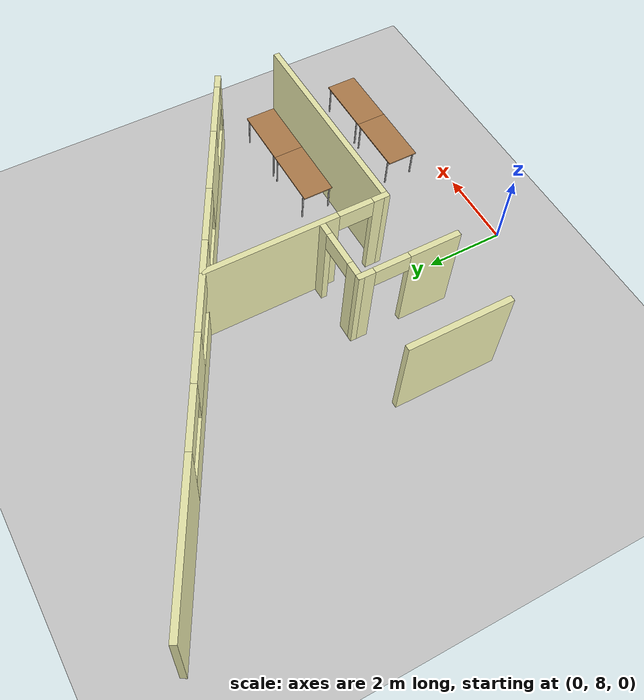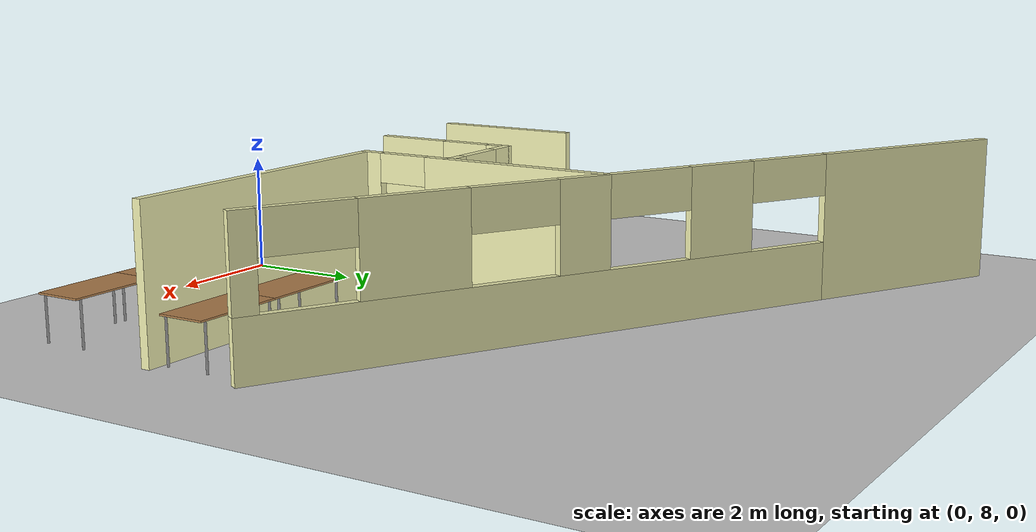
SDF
<sdf version="1.6">
 <world name="default">
  <model name="ground_plane">
   <static>1</static>
   <link name="link">
    <collision name="collision">
     <geometry><plane><normal>0 0 1</normal><size>100 100</size></plane></geometry>
     <surface><friction><ode><mu>100</mu><mu2>50</mu2></ode></friction></surface>
    </collision>
    <visual name="visual">
     <cast_shadows>0</cast_shadows>
     <geometry><plane><normal>0 0 1</normal><size>100 100</size></plane></geometry>
     <material>
      <script><uri>file://media/materials/scripts/gazebo.material</uri><name>Gazebo/Grey</name></script>
     </material>
    </visual>
   </link>
  </model>
  <model name="Building">
   <link name="Wall_12">
    <pose>0 16.2364 0 0 0 -0.515549</pose>
    <visual name="Wall_12_Visual_0">
     <pose>-5.14943 0 1.25 0 -0 0</pose>
     <geometry><box><size>3.6439 0.15 2.5</size></box></geometry>
     <material>
      <script><uri>file://media/materials/scripts/gazebo.material</uri><name>Gazebo/Grey</name></script>
      <ambient>0.92 0.92 0.68 1</ambient>
     </material>
     <meta><layer>0</layer></meta>
    </visual>
    <collision name="Wall_12_Collision_0">
     <geometry><box><size>3.6439 0.15 2.5</size></box></geometry>
     <pose>-5.14943 0 1.25 0 -0 0</pose>
    </collision>
    <visual name="Wall_12_Visual_1">
     <pose>1.82195 0 0.5 0 -0 0</pose>
     <geometry><box><size>10.2989 0.15 1</size></box></geometry>
     <material>
      <script><uri>file://media/materials/scripts/gazebo.material</uri><name>Gazebo/Grey</name></script>
      <ambient>0.92 0.92 0.68 1</ambient>
     </material>
     <meta><layer>0</layer></meta>
    </visual>
    <collision name="Wall_12_Collision_1">
     <geometry><box><size>10.2989 0.15 1</size></box></geometry>
     <pose>1.82195 0 0.5 0 -0 0</pose>
    </collision>
    <visual name="Wall_12_Visual_2">
     <pose>-1.22144 0 1.75 0 -0 0</pose>
     <geometry><box><size>1.21209 0.15 1.5</size></box></geometry>
     <material>
      <script><uri>file://media/materials/scripts/gazebo.material</uri><name>Gazebo/Grey</name></script>
      <ambient>0.92 0.92 0.68 1</ambient>
     </material>
     <meta><layer>0</layer></meta>
    </visual>
    <collision name="Wall_12_Collision_2">
     <geometry><box><size>1.21209 0.15 1.5</size></box></geometry>
     <pose>-1.22144 0 1.75 0 -0 0</pose>
    </collision>
    <visual name="Wall_12_Visual_3">
     <pose>1.33933 0 1.75 0 -0 0</pose>
     <geometry><box><size>0.909442 0.15 1.5</size></box></geometry>
     <material>
      <script><uri>file://media/materials/scripts/gazebo.material</uri><name>Gazebo/Grey</name></script>
      <ambient>0.92 0.92 0.68 1</ambient>
     </material>
     <meta><layer>0</layer></meta>
    </visual>
    <collision name="Wall_12_Collision_3">
     <geometry><box><size>0.909442 0.15 1.5</size></box></geometry>
     <pose>1.33933 0 1.75 0 -0 0</pose>
    </collision>
    <visual name="Wall_12_Visual_4">
     <pose>4.18293 0 1.75 0 -0 0</pose>
     <geometry><box><size>1.77777 0.15 1.5</size></box></geometry>
     <material>
      <script><uri>file://media/materials/scripts/gazebo.material</uri><name>Gazebo/Grey</name></script>
      <ambient>0.92 0.92 0.68 1</ambient>
     </material>
     <meta><layer>0</layer></meta>
    </visual>
    <collision name="Wall_12_Collision_4">
     <geometry><box><size>1.77777 0.15 1.5</size></box></geometry>
     <pose>4.18293 0 1.75 0 -0 0</pose>
    </collision>
    <visual name="Wall_12_Visual_5">
     <pose>6.7716 0 1.75 0 -0 0</pose>
     <geometry><box><size>0.399558 0.15 1.5</size></box></geometry>
     <material>
      <script><uri>file://media/materials/scripts/gazebo.material</uri><name>Gazebo/Grey</name></script>
      <ambient>0.92 0.92 0.68 1</ambient>
     </material>
     <meta><layer>0</layer></meta>
    </visual>
    <collision name="Wall_12_Collision_5">
     <geometry><box><size>0.399558 0.15 1.5</size></box></geometry>
     <pose>6.7716 0 1.75 0 -0 0</pose>
    </collision>
    <visual name="Wall_12_Visual_6">
     <pose>-2.57748 0 2.15 0 -0 0</pose>
     <geometry><box><size>1.5 0.15 0.7</size></box></geometry>
     <material>
      <script><uri>file://media/materials/scripts/gazebo.material</uri><name>Gazebo/Grey</name></script>
      <ambient>0.92 0.92 0.68 1</ambient>
     </material>
     <meta><layer>0</layer></meta>
    </visual>
    <collision name="Wall_12_Collision_6">
     <geometry><box><size>1.5 0.15 0.7</size></box></geometry>
     <pose>-2.57748 0 2.15 0 -0 0</pose>
    </collision>
    <visual name="Wall_12_Visual_7">
     <pose>0.134607 0 2.15 0 -0 0</pose>
     <geometry><box><size>1.5 0.15 0.7</size></box></geometry>
     <material>
      <script><uri>file://media/materials/scripts/gazebo.material</uri><name>Gazebo/Grey</name></script>
      <ambient>0.92 0.92 0.68 1</ambient>
     </material>
     <meta><layer>0</layer></meta>
    </visual>
    <collision name="Wall_12_Collision_7">
     <geometry><box><size>1.5 0.15 0.7</size></box></geometry>
     <pose>0.134607 0 2.15 0 -0 0</pose>
    </collision>
    <visual name="Wall_12_Visual_8">
     <pose>2.54405 0 2.15 0 -0 0</pose>
     <geometry><box><size>1.5 0.15 0.7</size></box></geometry>
     <material>
      <script><uri>file://media/materials/scripts/gazebo.material</uri><name>Gazebo/Grey</name></script>
      <ambient>0.92 0.92 0.68 1</ambient>
     </material>
     <meta><layer>0</layer></meta>
    </visual>
    <collision name="Wall_12_Collision_8">
     <geometry><box><size>1.5 0.15 0.7</size></box></geometry>
     <pose>2.54405 0 2.15 0 -0 0</pose>
    </collision>
    <visual name="Wall_12_Visual_9">
     <pose>5.82182 0 2.15 0 -0 0</pose>
     <geometry><box><size>1.5 0.15 0.7</size></box></geometry>
     <material>
      <script><uri>file://media/materials/scripts/gazebo.material</uri><name>Gazebo/Grey</name></script>
      <ambient>0.92 0.92 0.68 1</ambient>
     </material>
     <meta><layer>0</layer></meta>
    </visual>
    <collision name="Wall_12_Collision_9">
     <geometry><box><size>1.5 0.15 0.7</size></box></geometry>
     <pose>5.82182 0 2.15 0 -0 0</pose>
    </collision>
   </link>
   <link name="Wall_36">
    <collision name="Wall_36_Collision">
     <geometry><box><size>5.35 0.15 2.5</size></box></geometry>
     <pose>0 0 1.25 0 -0 0</pose>
    </collision>
    <visual name="Wall_36_Visual">
     <pose>0 0 1.25 0 -0 0</pose>
     <geometry><box><size>5.35 0.15 2.5</size></box></geometry>
     <material>
      <script><uri>file://media/materials/scripts/gazebo.material</uri><name>Gazebo/Grey</name></script>
      <ambient>0.92 0.92 0.68 1</ambient>
     </material>
     <meta><layer>0</layer></meta>
    </visual>
    <pose>3.4 11.1364 0 0 -0 3.14159</pose>
   </link>
   <link name="Wall_38">
    <pose>0.8 13.4364 0 0 -0 1.5708</pose>
    <visual name="Wall_38_Visual_0">
     <pose>-2.16251 0 1.25 0 -0 0</pose>
     <geometry><box><size>0.424975 0.15 2.5</size></box></geometry>
     <material>
      <script><uri>file://media/materials/scripts/gazebo.material</uri><name>Gazebo/Grey</name></script>
      <ambient>0.92 0.92 0.68 1</ambient>
     </material>
     <meta><layer>0</layer></meta>
    </visual>
    <collision name="Wall_38_Collision_0">
     <geometry><box><size>0.424975 0.15 2.5</size></box></geometry>
     <pose>-2.16251 0 1.25 0 -0 0</pose>
    </collision>
    <visual name="Wall_38_Visual_1">
     <pose>0.662488 0 1.25 0 -0 0</pose>
     <geometry><box><size>3.42503 0.15 2.5</size></box></geometry>
     <material>
      <script><uri>file://media/materials/scripts/gazebo.material</uri><name>Gazebo/Grey</name></script>
      <ambient>0.92 0.92 0.68 1</ambient>
     </material>
     <meta><layer>0</layer></meta>
    </visual>
    <collision name="Wall_38_Collision_1">
     <geometry><box><size>3.42503 0.15 2.5</size></box></geometry>
     <pose>0.662488 0 1.25 0 -0 0</pose>
    </collision>
    <visual name="Wall_38_Visual_2">
     <pose>-1.50002 0 2.25 0 -0 0</pose>
     <geometry><box><size>0.9 0.15 0.5</size></box></geometry>
     <material>
      <script><uri>file://media/materials/scripts/gazebo.material</uri><name>Gazebo/Grey</name></script>
      <ambient>0.92 0.92 0.68 1</ambient>
     </material>
     <meta><layer>0</layer></meta>
    </visual>
    <collision name="Wall_38_Collision_2">
     <geometry><box><size>0.9 0.15 0.5</size></box></geometry>
     <pose>-1.50002 0 2.25 0 -0 0</pose>
    </collision>
   </link>
   <link name="Wall_44">
    <pose>-0.05 12.8364 0 0 -0 0</pose>
    <visual name="Wall_44_Visual_0">
     <pose>-0.676746 0 1.25 0 -0 0</pose>
     <geometry><box><size>0.496509 0.15 2.5</size></box></geometry>
     <material>
      <script><uri>file://media/materials/scripts/gazebo.material</uri><name>Gazebo/Grey</name></script>
      <ambient>0.92 0.92 0.68 1</ambient>
     </material>
     <meta><layer>0</layer></meta>
    </visual>
    <collision name="Wall_44_Collision_0">
     <geometry><box><size>0.496509 0.15 2.5</size></box></geometry>
     <pose>-0.676746 0 1.25 0 -0 0</pose>
    </collision>
    <visual name="Wall_44_Visual_1">
     <pose>0.698254 0 1.25 0 -0 0</pose>
     <geometry><box><size>0.453491 0.15 2.5</size></box></geometry>
     <material>
      <script><uri>file://media/materials/scripts/gazebo.material</uri><name>Gazebo/Grey</name></script>
      <ambient>0.92 0.92 0.68 1</ambient>
     </material>
     <meta><layer>0</layer></meta>
    </visual>
    <collision name="Wall_44_Collision_1">
     <geometry><box><size>0.453491 0.15 2.5</size></box></geometry>
     <pose>0.698254 0 1.25 0 -0 0</pose>
    </collision>
    <visual name="Wall_44_Visual_2">
     <pose>0.021509 0 2.25 0 -0 0</pose>
     <geometry><box><size>0.9 0.15 0.5</size></box></geometry>
     <material>
      <script><uri>file://media/materials/scripts/gazebo.material</uri><name>Gazebo/Grey</name></script>
      <ambient>0.92 0.92 0.68 1</ambient>
     </material>
     <meta><layer>0</layer></meta>
    </visual>
    <collision name="Wall_44_Collision_2">
     <geometry><box><size>0.9 0.15 0.5</size></box></geometry>
     <pose>0.021509 0 2.25 0 -0 0</pose>
    </collision>
   </link>
   <link name="Wall_47">
    <pose>-0.9 11.5864 0 0 0 -1.5708</pose>
    <visual name="Wall_47_Visual_0">
     <pose>-1.10875 0 1.25 0 -0 0</pose>
     <geometry><box><size>0.432501 0.15 2.5</size></box></geometry>
     <material>
      <script><uri>file://media/materials/scripts/gazebo.material</uri><name>Gazebo/Grey</name></script>
      <ambient>0.92 0.92 0.68 1</ambient>
     </material>
     <meta><layer>0</layer></meta>
    </visual>
    <collision name="Wall_47_Collision_0">
     <geometry><box><size>0.432501 0.15 2.5</size></box></geometry>
     <pose>-1.10875 0 1.25 0 -0 0</pose>
    </collision>
    <visual name="Wall_47_Visual_1">
     <pose>0.66625 0 1.25 0 -0 0</pose>
     <geometry><box><size>1.3175 0.15 2.5</size></box></geometry>
     <material>
      <script><uri>file://media/materials/scripts/gazebo.material</uri><name>Gazebo/Grey</name></script>
      <ambient>0.92 0.92 0.68 1</ambient>
     </material>
     <meta><layer>0</layer></meta>
    </visual>
    <collision name="Wall_47_Collision_1">
     <geometry><box><size>1.3175 0.15 2.5</size></box></geometry>
     <pose>0.66625 0 1.25 0 -0 0</pose>
    </collision>
    <visual name="Wall_47_Visual_2">
     <pose>-0.442499 0 2.25 0 -0 0</pose>
     <geometry><box><size>0.9 0.15 0.5</size></box></geometry>
     <material>
      <script><uri>file://media/materials/scripts/gazebo.material</uri><name>Gazebo/Grey</name></script>
      <ambient>0.92 0.92 0.68 1</ambient>
     </material>
     <meta><layer>0</layer></meta>
    </visual>
    <collision name="Wall_47_Collision_2">
     <geometry><box><size>0.9 0.15 0.5</size></box></geometry>
     <pose>-0.442499 0 2.25 0 -0 0</pose>
    </collision>
   </link>
   <link name="Wall_61">
    <collision name="Wall_61_Collision">
     <geometry><box><size>2.65 0.15 2.5</size></box></geometry>
     <pose>0 0 1.25 0 -0 0</pose>
    </collision>
    <visual name="Wall_61_Visual">
     <pose>0 0 1.25 0 -0 0</pose>
     <geometry><box><size>2.65 0.15 2.5</size></box></geometry>
     <material>
      <script><uri>file://media/materials/scripts/gazebo.material</uri><name>Gazebo/Grey</name></script>
      <ambient>0.92 0.92 0.68 1</ambient>
     </material>
     <meta><layer>0</layer></meta>
    </visual>
    <pose>-2.9 11.5864 0 0 0 -1.5708</pose>
   </link>
   <static>1</static>
  </model>
  <model name="tablealt_0_clone_10">
   <link name="link">
    <inertial>
     <mass>1</mass>
     <inertia><ixx>1</ixx><ixy>0</ixy><ixz>0</ixz><iyy>1</iyy><iyz>0</iyz><izz>1</izz></inertia>
    </inertial>
    <visual name="back_right_leg">
     <pose>-0.68 -0.38 0.4 0 -0 0</pose>
     <geometry><cylinder><radius>0.02</radius><length>0.8</length></cylinder></geometry>
     <material>
      <script><uri>file://media/materials/scripts/gazebo.material</uri><name>Gazebo/Grey</name></script>
      <shader type="pixel"><normal_map>__default__</normal_map></shader>
      <ambient>0.3 0.3 0.3 1</ambient>
      <diffuse>0.7 0.7 0.7 1</diffuse>
      <specular>0.01 0.01 0.01 1</specular>
      <emissive>0 0 0 1</emissive>
     </material>
    </visual>
    <visual name="back_left_leg">
     <pose>-0.68 0.38 0.4 0 -0 0</pose>
     <geometry><cylinder><radius>0.02</radius><length>0.8</length></cylinder></geometry>
     <material>
      <script><uri>file://media/materials/scripts/gazebo.material</uri><name>Gazebo/Grey</name></script>
      <shader type="pixel"><normal_map>__default__</normal_map></shader>
      <ambient>0.3 0.3 0.3 1</ambient>
      <diffuse>0.7 0.7 0.7 1</diffuse>
      <specular>0.01 0.01 0.01 1</specular>
      <emissive>0 0 0 1</emissive>
     </material>
    </visual>
    <visual name="visual1">
     <pose>0 0 0.8 0 -0 0</pose>
     <geometry><box><size>1.57 0.8 0.03</size></box></geometry>
     <material>
      <script><uri>file://media/materials/scripts/gazebo.material</uri><name>Gazebo/Wood</name></script>
      <shader type="pixel"><normal_map>__default__</normal_map></shader>
      <ambient>0.92 0.92 0.68 1</ambient>
      <diffuse>1 1 1 1</diffuse>
      <specular>0.2 0.2 0.2 1</specular>
      <emissive>0 0 0 1</emissive>
     </material>
    </visual>
    <visual name="front_left_leg">
     <pose>0.68 0.38 0.4 0 -0 0</pose>
     <geometry><cylinder><radius>0.02</radius><length>0.8</length></cylinder></geometry>
     <material>
      <script><uri>file://media/materials/scripts/gazebo.material</uri><name>Gazebo/Grey</name></script>
      <shader type="pixel"><normal_map>__default__</normal_map></shader>
      <ambient>0.3 0.3 0.3 1</ambient>
      <diffuse>0.7 0.7 0.7 1</diffuse>
      <specular>0.01 0.01 0.01 1</specular>
      <emissive>0 0 0 1</emissive>
     </material>
    </visual>
    <visual name="front_right_leg">
     <pose>0.68 -0.38 0.4 0 -0 0</pose>
     <geometry><cylinder><radius>0.02</radius><length>0.8</length></cylinder></geometry>
     <material>
      <script><uri>file://media/materials/scripts/gazebo.material</uri><name>Gazebo/Grey</name></script>
      <shader type="pixel"><normal_map>__default__</normal_map></shader>
      <ambient>0.3 0.3 0.3 1</ambient>
      <diffuse>0.7 0.7 0.7 1</diffuse>
      <specular>0.01 0.01 0.01 1</specular>
      <emissive>0 0 0 1</emissive>
     </material>
    </visual>
    <collision name="front_right_leg">
     <pose>0.68 -0.38 0.4 0 -0 0</pose>
     <geometry><cylinder><radius>0.02</radius><length>0.8</length></cylinder></geometry>
     <surface>
      <friction>
       <ode><mu>1</mu><mu2>1</mu2><fdir1>0 0 0</fdir1><slip1>0</slip1><slip2>0</slip2></ode>
       <torsional>
        <coefficient>1</coefficient>
        <patch_radius>0</patch_radius>
        <surface_radius>0</surface_radius>
        <use_patch_radius>1</use_patch_radius>
        <ode><slip>0</slip></ode>
       </torsional>
      </friction>
      <bounce><restitution_coefficient>0</restitution_coefficient><threshold>1e+06</threshold></bounce>
      <contact>
       <collide_without_contact>0</collide_without_contact>
       <collide_without_contact_bitmask>1</collide_without_contact_bitmask>
       <collide_bitmask>1</collide_bitmask>
       <ode>
        <soft_cfm>0</soft_cfm>
        <soft_erp>0.2</soft_erp>
        <kp>1e+13</kp>
        <kd>1</kd>
        <max_vel>0.01</max_vel>
        <min_depth>0</min_depth>
       </ode>
       <bullet>
        <split_impulse>1</split_impulse>
        <split_impulse_penetration_threshold>-0.01</split_impulse_penetration_threshold>
        <soft_cfm>0</soft_cfm>
        <soft_erp>0.2</soft_erp>
        <kp>1e+13</kp>
        <kd>1</kd>
       </bullet>
      </contact>
     </surface>
    </collision>
    <collision name="surface">
     <pose>0 0 0.8 0 -0 0</pose>
     <geometry><box><size>1.5 0.8 0.03</size></box></geometry>
     <surface>
      <friction>
       <ode><mu>0.6</mu><mu2>0.6</mu2><fdir1>0 0 0</fdir1><slip1>0</slip1><slip2>0</slip2></ode>
       <torsional>
        <coefficient>1</coefficient>
        <patch_radius>0</patch_radius>
        <surface_radius>0</surface_radius>
        <use_patch_radius>1</use_patch_radius>
        <ode><slip>0</slip></ode>
       </torsional>
      </friction>
      <bounce><restitution_coefficient>0</restitution_coefficient><threshold>1e+06</threshold></bounce>
      <contact>
       <collide_without_contact>0</collide_without_contact>
       <collide_without_contact_bitmask>1</collide_without_contact_bitmask>
       <collide_bitmask>1</collide_bitmask>
       <ode>
        <soft_cfm>0</soft_cfm>
        <soft_erp>0.2</soft_erp>
        <kp>1e+13</kp>
        <kd>1</kd>
        <max_vel>0.01</max_vel>
        <min_depth>0</min_depth>
       </ode>
       <bullet>
        <split_impulse>1</split_impulse>
        <split_impulse_penetration_threshold>-0.01</split_impulse_penetration_threshold>
        <soft_cfm>0</soft_cfm>
        <soft_erp>0.2</soft_erp>
        <kp>1e+13</kp>
        <kd>1</kd>
       </bullet>
      </contact>
     </surface>
    </collision>
    <collision name="front_left_leg">
     <pose>0.68 0.38 0.4 0 -0 0</pose>
     <geometry><cylinder><radius>0.02</radius><length>0.8</length></cylinder></geometry>
     <surface>
      <friction>
       <ode><mu>1</mu><mu2>1</mu2><fdir1>0 0 0</fdir1><slip1>0</slip1><slip2>0</slip2></ode>
       <torsional>
        <coefficient>1</coefficient>
        <patch_radius>0</patch_radius>
        <surface_radius>0</surface_radius>
        <use_patch_radius>1</use_patch_radius>
        <ode><slip>0</slip></ode>
       </torsional>
      </friction>
      <bounce><restitution_coefficient>0</restitution_coefficient><threshold>1e+06</threshold></bounce>
      <contact>
       <collide_without_contact>0</collide_without_contact>
       <collide_without_contact_bitmask>1</collide_without_contact_bitmask>
       <collide_bitmask>1</collide_bitmask>
       <ode>
        <soft_cfm>0</soft_cfm>
        <soft_erp>0.2</soft_erp>
        <kp>1e+13</kp>
        <kd>1</kd>
        <max_vel>0.01</max_vel>
        <min_depth>0</min_depth>
       </ode>
       <bullet>
        <split_impulse>1</split_impulse>
        <split_impulse_penetration_threshold>-0.01</split_impulse_penetration_threshold>
        <soft_cfm>0</soft_cfm>
        <soft_erp>0.2</soft_erp>
        <kp>1e+13</kp>
        <kd>1</kd>
       </bullet>
      </contact>
     </surface>
    </collision>
    <collision name="back_left_leg">
     <pose>-0.68 0.38 0.4 0 -0 0</pose>
     <geometry><cylinder><radius>0.02</radius><length>0.8</length></cylinder></geometry>
     <surface>
      <friction>
       <ode><mu>1</mu><mu2>1</mu2><fdir1>0 0 0</fdir1><slip1>0</slip1><slip2>0</slip2></ode>
       <torsional>
        <coefficient>1</coefficient>
        <patch_radius>0</patch_radius>
        <surface_radius>0</surface_radius>
        <use_patch_radius>1</use_patch_radius>
        <ode><slip>0</slip></ode>
       </torsional>
      </friction>
      <bounce><restitution_coefficient>0</restitution_coefficient><threshold>1e+06</threshold></bounce>
      <contact>
       <collide_without_contact>0</collide_without_contact>
       <collide_without_contact_bitmask>1</collide_without_contact_bitmask>
       <collide_bitmask>1</collide_bitmask>
       <ode>
        <soft_cfm>0</soft_cfm>
        <soft_erp>0.2</soft_erp>
        <kp>1e+13</kp>
        <kd>1</kd>
        <max_vel>0.01</max_vel>
        <min_depth>0</min_depth>
       </ode>
       <bullet>
        <split_impulse>1</split_impulse>
        <split_impulse_penetration_threshold>-0.01</split_impulse_penetration_threshold>
        <soft_cfm>0</soft_cfm>
        <soft_erp>0.2</soft_erp>
        <kp>1e+13</kp>
        <kd>1</kd>
       </bullet>
      </contact>
     </surface>
    </collision>
    <collision name="back_right_leg">
     <pose>-0.68 -0.38 0.4 0 -0 0</pose>
     <geometry><cylinder><radius>0.02</radius><length>0.8</length></cylinder></geometry>
     <surface>
      <friction>
       <ode><mu>1</mu><mu2>1</mu2><fdir1>0 0 0</fdir1><slip1>0</slip1><slip2>0</slip2></ode>
       <torsional>
        <coefficient>1</coefficient>
        <patch_radius>0</patch_radius>
        <surface_radius>0</surface_radius>
        <use_patch_radius>1</use_patch_radius>
        <ode><slip>0</slip></ode>
       </torsional>
      </friction>
      <bounce><restitution_coefficient>0</restitution_coefficient><threshold>1e+06</threshold></bounce>
      <contact>
       <collide_without_contact>0</collide_without_contact>
       <collide_without_contact_bitmask>1</collide_without_contact_bitmask>
       <collide_bitmask>1</collide_bitmask>
       <ode>
        <soft_cfm>0</soft_cfm>
        <soft_erp>0.2</soft_erp>
        <kp>1e+13</kp>
        <kd>1</kd>
        <max_vel>0.01</max_vel>
        <min_depth>0</min_depth>
       </ode>
       <bullet>
        <split_impulse>1</split_impulse>
        <split_impulse_penetration_threshold>-0.01</split_impulse_penetration_threshold>
        <soft_cfm>0</soft_cfm>
        <soft_erp>0.2</soft_erp>
        <kp>1e+13</kp>
        <kd>1</kd>
       </bullet>
      </contact>
     </surface>
    </collision>
   </link>
   <static>1</static>
   <pose>5.12 9.2 0 0 -0 0</pose>
  </model>
  <model name="tablealt_0_clone_11">
   <link name="link">
    <inertial>
     <mass>1</mass>
     <inertia><ixx>1</ixx><ixy>0</ixy><ixz>0</ixz><iyy>1</iyy><iyz>0</iyz><izz>1</izz></inertia>
    </inertial>
    <visual name="back_right_leg">
     <pose>-0.68 -0.38 0.4 0 -0 0</pose>
     <geometry><cylinder><radius>0.02</radius><length>0.8</length></cylinder></geometry>
     <material>
      <script><uri>file://media/materials/scripts/gazebo.material</uri><name>Gazebo/Grey</name></script>
      <shader type="pixel"><normal_map>__default__</normal_map></shader>
      <ambient>0.3 0.3 0.3 1</ambient>
      <diffuse>0.7 0.7 0.7 1</diffuse>
      <specular>0.01 0.01 0.01 1</specular>
      <emissive>0 0 0 1</emissive>
     </material>
    </visual>
    <visual name="back_left_leg">
     <pose>-0.68 0.38 0.4 0 -0 0</pose>
     <geometry><cylinder><radius>0.02</radius><length>0.8</length></cylinder></geometry>
     <material>
      <script><uri>file://media/materials/scripts/gazebo.material</uri><name>Gazebo/Grey</name></script>
      <shader type="pixel"><normal_map>__default__</normal_map></shader>
      <ambient>0.3 0.3 0.3 1</ambient>
      <diffuse>0.7 0.7 0.7 1</diffuse>
      <specular>0.01 0.01 0.01 1</specular>
      <emissive>0 0 0 1</emissive>
     </material>
    </visual>
    <visual name="visual1">
     <pose>0 0 0.8 0 -0 0</pose>
     <geometry><box><size>1.57 0.8 0.03</size></box></geometry>
     <material>
      <script><uri>file://media/materials/scripts/gazebo.material</uri><name>Gazebo/Wood</name></script>
      <shader type="pixel"><normal_map>__default__</normal_map></shader>
      <ambient>0.92 0.92 0.68 1</ambient>
      <diffuse>1 1 1 1</diffuse>
      <specular>0.2 0.2 0.2 1</specular>
      <emissive>0 0 0 1</emissive>
     </material>
    </visual>
    <visual name="front_left_leg">
     <pose>0.68 0.38 0.4 0 -0 0</pose>
     <geometry><cylinder><radius>0.02</radius><length>0.8</length></cylinder></geometry>
     <material>
      <script><uri>file://media/materials/scripts/gazebo.material</uri><name>Gazebo/Grey</name></script>
      <shader type="pixel"><normal_map>__default__</normal_map></shader>
      <ambient>0.3 0.3 0.3 1</ambient>
      <diffuse>0.7 0.7 0.7 1</diffuse>
      <specular>0.01 0.01 0.01 1</specular>
      <emissive>0 0 0 1</emissive>
     </material>
    </visual>
    <visual name="front_right_leg">
     <pose>0.68 -0.38 0.4 0 -0 0</pose>
     <geometry><cylinder><radius>0.02</radius><length>0.8</length></cylinder></geometry>
     <material>
      <script><uri>file://media/materials/scripts/gazebo.material</uri><name>Gazebo/Grey</name></script>
      <shader type="pixel"><normal_map>__default__</normal_map></shader>
      <ambient>0.3 0.3 0.3 1</ambient>
      <diffuse>0.7 0.7 0.7 1</diffuse>
      <specular>0.01 0.01 0.01 1</specular>
      <emissive>0 0 0 1</emissive>
     </material>
    </visual>
    <collision name="front_right_leg">
     <pose>0.68 -0.38 0.4 0 -0 0</pose>
     <geometry><cylinder><radius>0.02</radius><length>0.8</length></cylinder></geometry>
     <surface>
      <friction>
       <ode><mu>1</mu><mu2>1</mu2><fdir1>0 0 0</fdir1><slip1>0</slip1><slip2>0</slip2></ode>
       <torsional>
        <coefficient>1</coefficient>
        <patch_radius>0</patch_radius>
        <surface_radius>0</surface_radius>
        <use_patch_radius>1</use_patch_radius>
        <ode><slip>0</slip></ode>
       </torsional>
      </friction>
      <bounce><restitution_coefficient>0</restitution_coefficient><threshold>1e+06</threshold></bounce>
      <contact>
       <collide_without_contact>0</collide_without_contact>
       <collide_without_contact_bitmask>1</collide_without_contact_bitmask>
       <collide_bitmask>1</collide_bitmask>
       <ode>
        <soft_cfm>0</soft_cfm>
        <soft_erp>0.2</soft_erp>
        <kp>1e+13</kp>
        <kd>1</kd>
        <max_vel>0.01</max_vel>
        <min_depth>0</min_depth>
       </ode>
       <bullet>
        <split_impulse>1</split_impulse>
        <split_impulse_penetration_threshold>-0.01</split_impulse_penetration_threshold>
        <soft_cfm>0</soft_cfm>
        <soft_erp>0.2</soft_erp>
        <kp>1e+13</kp>
        <kd>1</kd>
       </bullet>
      </contact>
     </surface>
    </collision>
    <collision name="surface">
     <pose>0 0 0.8 0 -0 0</pose>
     <geometry><box><size>1.5 0.8 0.03</size></box></geometry>
     <surface>
      <friction>
       <ode><mu>0.6</mu><mu2>0.6</mu2><fdir1>0 0 0</fdir1><slip1>0</slip1><slip2>0</slip2></ode>
       <torsional>
        <coefficient>1</coefficient>
        <patch_radius>0</patch_radius>
        <surface_radius>0</surface_radius>
        <use_patch_radius>1</use_patch_radius>
        <ode><slip>0</slip></ode>
       </torsional>
      </friction>
      <bounce><restitution_coefficient>0</restitution_coefficient><threshold>1e+06</threshold></bounce>
      <contact>
       <collide_without_contact>0</collide_without_contact>
       <collide_without_contact_bitmask>1</collide_without_contact_bitmask>
       <collide_bitmask>1</collide_bitmask>
       <ode>
        <soft_cfm>0</soft_cfm>
        <soft_erp>0.2</soft_erp>
        <kp>1e+13</kp>
        <kd>1</kd>
        <max_vel>0.01</max_vel>
        <min_depth>0</min_depth>
       </ode>
       <bullet>
        <split_impulse>1</split_impulse>
        <split_impulse_penetration_threshold>-0.01</split_impulse_penetration_threshold>
        <soft_cfm>0</soft_cfm>
        <soft_erp>0.2</soft_erp>
        <kp>1e+13</kp>
        <kd>1</kd>
       </bullet>
      </contact>
     </surface>
    </collision>
    <collision name="front_left_leg">
     <pose>0.68 0.38 0.4 0 -0 0</pose>
     <geometry><cylinder><radius>0.02</radius><length>0.8</length></cylinder></geometry>
     <surface>
      <friction>
       <ode><mu>1</mu><mu2>1</mu2><fdir1>0 0 0</fdir1><slip1>0</slip1><slip2>0</slip2></ode>
       <torsional>
        <coefficient>1</coefficient>
        <patch_radius>0</patch_radius>
        <surface_radius>0</surface_radius>
        <use_patch_radius>1</use_patch_radius>
        <ode><slip>0</slip></ode>
       </torsional>
      </friction>
      <bounce><restitution_coefficient>0</restitution_coefficient><threshold>1e+06</threshold></bounce>
      <contact>
       <collide_without_contact>0</collide_without_contact>
       <collide_without_contact_bitmask>1</collide_without_contact_bitmask>
       <collide_bitmask>1</collide_bitmask>
       <ode>
        <soft_cfm>0</soft_cfm>
        <soft_erp>0.2</soft_erp>
        <kp>1e+13</kp>
        <kd>1</kd>
        <max_vel>0.01</max_vel>
        <min_depth>0</min_depth>
       </ode>
       <bullet>
        <split_impulse>1</split_impulse>
        <split_impulse_penetration_threshold>-0.01</split_impulse_penetration_threshold>
        <soft_cfm>0</soft_cfm>
        <soft_erp>0.2</soft_erp>
        <kp>1e+13</kp>
        <kd>1</kd>
       </bullet>
      </contact>
     </surface>
    </collision>
    <collision name="back_left_leg">
     <pose>-0.68 0.38 0.4 0 -0 0</pose>
     <geometry><cylinder><radius>0.02</radius><length>0.8</length></cylinder></geometry>
     <surface>
      <friction>
       <ode><mu>1</mu><mu2>1</mu2><fdir1>0 0 0</fdir1><slip1>0</slip1><slip2>0</slip2></ode>
       <torsional>
        <coefficient>1</coefficient>
        <patch_radius>0</patch_radius>
        <surface_radius>0</surface_radius>
        <use_patch_radius>1</use_patch_radius>
        <ode><slip>0</slip></ode>
       </torsional>
      </friction>
      <bounce><restitution_coefficient>0</restitution_coefficient><threshold>1e+06</threshold></bounce>
      <contact>
       <collide_without_contact>0</collide_without_contact>
       <collide_without_contact_bitmask>1</collide_without_contact_bitmask>
       <collide_bitmask>1</collide_bitmask>
       <ode>
        <soft_cfm>0</soft_cfm>
        <soft_erp>0.2</soft_erp>
        <kp>1e+13</kp>
        <kd>1</kd>
        <max_vel>0.01</max_vel>
        <min_depth>0</min_depth>
       </ode>
       <bullet>
        <split_impulse>1</split_impulse>
        <split_impulse_penetration_threshold>-0.01</split_impulse_penetration_threshold>
        <soft_cfm>0</soft_cfm>
        <soft_erp>0.2</soft_erp>
        <kp>1e+13</kp>
        <kd>1</kd>
       </bullet>
      </contact>
     </surface>
    </collision>
    <collision name="back_right_leg">
     <pose>-0.68 -0.38 0.4 0 -0 0</pose>
     <geometry><cylinder><radius>0.02</radius><length>0.8</length></cylinder></geometry>
     <surface>
      <friction>
       <ode><mu>1</mu><mu2>1</mu2><fdir1>0 0 0</fdir1><slip1>0</slip1><slip2>0</slip2></ode>
       <torsional>
        <coefficient>1</coefficient>
        <patch_radius>0</patch_radius>
        <surface_radius>0</surface_radius>
        <use_patch_radius>1</use_patch_radius>
        <ode><slip>0</slip></ode>
       </torsional>
      </friction>
      <bounce><restitution_coefficient>0</restitution_coefficient><threshold>1e+06</threshold></bounce>
      <contact>
       <collide_without_contact>0</collide_without_contact>
       <collide_without_contact_bitmask>1</collide_without_contact_bitmask>
       <collide_bitmask>1</collide_bitmask>
       <ode>
        <soft_cfm>0</soft_cfm>
        <soft_erp>0.2</soft_erp>
        <kp>1e+13</kp>
        <kd>1</kd>
        <max_vel>0.01</max_vel>
        <min_depth>0</min_depth>
       </ode>
       <bullet>
        <split_impulse>1</split_impulse>
        <split_impulse_penetration_threshold>-0.01</split_impulse_penetration_threshold>
        <soft_cfm>0</soft_cfm>
        <soft_erp>0.2</soft_erp>
        <kp>1e+13</kp>
        <kd>1</kd>
       </bullet>
      </contact>
     </surface>
    </collision>
   </link>
   <static>1</static>
   <pose>3.55 9.2 0 0 -0 0</pose>
  </model>
  <model name="tablealt_0_clone_68">
   <link name="link">
    <inertial>
     <mass>1</mass>
     <inertia><ixx>1</ixx><ixy>0</ixy><ixz>0</ixz><iyy>1</iyy><iyz>0</iyz><izz>1</izz></inertia>
    </inertial>
    <visual name="back_right_leg">
     <pose>-0.68 -0.38 0.4 0 -0 0</pose>
     <geometry><cylinder><radius>0.02</radius><length>0.8</length></cylinder></geometry>
     <material>
      <script><uri>file://media/materials/scripts/gazebo.material</uri><name>Gazebo/Grey</name></script>
      <shader type="pixel"><normal_map>__default__</normal_map></shader>
      <ambient>0.3 0.3 0.3 1</ambient>
      <diffuse>0.7 0.7 0.7 1</diffuse>
      <specular>0.01 0.01 0.01 1</specular>
      <emissive>0 0 0 1</emissive>
     </material>
    </visual>
    <visual name="back_left_leg">
     <pose>-0.68 0.38 0.4 0 -0 0</pose>
     <geometry><cylinder><radius>0.02</radius><length>0.8</length></cylinder></geometry>
     <material>
      <script><uri>file://media/materials/scripts/gazebo.material</uri><name>Gazebo/Grey</name></script>
      <shader type="pixel"><normal_map>__default__</normal_map></shader>
      <ambient>0.3 0.3 0.3 1</ambient>
      <diffuse>0.7 0.7 0.7 1</diffuse>
      <specular>0.01 0.01 0.01 1</specular>
      <emissive>0 0 0 1</emissive>
     </material>
    </visual>
    <visual name="visual1">
     <pose>0 0 0.8 0 -0 0</pose>
     <geometry><box><size>1.57 0.8 0.03</size></box></geometry>
     <material>
      <script><uri>file://media/materials/scripts/gazebo.material</uri><name>Gazebo/Wood</name></script>
      <shader type="pixel"><normal_map>__default__</normal_map></shader>
      <ambient>0.92 0.92 0.68 1</ambient>
      <diffuse>1 1 1 1</diffuse>
      <specular>0.2 0.2 0.2 1</specular>
      <emissive>0 0 0 1</emissive>
     </material>
    </visual>
    <visual name="front_left_leg">
     <pose>0.68 0.38 0.4 0 -0 0</pose>
     <geometry><cylinder><radius>0.02</radius><length>0.8</length></cylinder></geometry>
     <material>
      <script><uri>file://media/materials/scripts/gazebo.material</uri><name>Gazebo/Grey</name></script>
      <shader type="pixel"><normal_map>__default__</normal_map></shader>
      <ambient>0.3 0.3 0.3 1</ambient>
      <diffuse>0.7 0.7 0.7 1</diffuse>
      <specular>0.01 0.01 0.01 1</specular>
      <emissive>0 0 0 1</emissive>
     </material>
    </visual>
    <visual name="front_right_leg">
     <pose>0.68 -0.38 0.4 0 -0 0</pose>
     <geometry><cylinder><radius>0.02</radius><length>0.8</length></cylinder></geometry>
     <material>
      <script><uri>file://media/materials/scripts/gazebo.material</uri><name>Gazebo/Grey</name></script>
      <shader type="pixel"><normal_map>__default__</normal_map></shader>
      <ambient>0.3 0.3 0.3 1</ambient>
      <diffuse>0.7 0.7 0.7 1</diffuse>
      <specular>0.01 0.01 0.01 1</specular>
      <emissive>0 0 0 1</emissive>
     </material>
    </visual>
    <collision name="front_right_leg">
     <pose>0.68 -0.38 0.4 0 -0 0</pose>
     <geometry><cylinder><radius>0.02</radius><length>0.8</length></cylinder></geometry>
     <surface>
      <friction>
       <ode><mu>1</mu><mu2>1</mu2><fdir1>0 0 0</fdir1><slip1>0</slip1><slip2>0</slip2></ode>
       <torsional>
        <coefficient>1</coefficient>
        <patch_radius>0</patch_radius>
        <surface_radius>0</surface_radius>
        <use_patch_radius>1</use_patch_radius>
        <ode><slip>0</slip></ode>
       </torsional>
      </friction>
      <bounce><restitution_coefficient>0</restitution_coefficient><threshold>1e+06</threshold></bounce>
      <contact>
       <collide_without_contact>0</collide_without_contact>
       <collide_without_contact_bitmask>1</collide_without_contact_bitmask>
       <collide_bitmask>1</collide_bitmask>
       <ode>
        <soft_cfm>0</soft_cfm>
        <soft_erp>0.2</soft_erp>
        <kp>1e+13</kp>
        <kd>1</kd>
        <max_vel>0.01</max_vel>
        <min_depth>0</min_depth>
       </ode>
       <bullet>
        <split_impulse>1</split_impulse>
        <split_impulse_penetration_threshold>-0.01</split_impulse_penetration_threshold>
        <soft_cfm>0</soft_cfm>
        <soft_erp>0.2</soft_erp>
        <kp>1e+13</kp>
        <kd>1</kd>
       </bullet>
      </contact>
     </surface>
    </collision>
    <collision name="surface">
     <pose>0 0 0.8 0 -0 0</pose>
     <geometry><box><size>1.5 0.8 0.03</size></box></geometry>
     <surface>
      <friction>
       <ode><mu>0.6</mu><mu2>0.6</mu2><fdir1>0 0 0</fdir1><slip1>0</slip1><slip2>0</slip2></ode>
       <torsional>
        <coefficient>1</coefficient>
        <patch_radius>0</patch_radius>
        <surface_radius>0</surface_radius>
        <use_patch_radius>1</use_patch_radius>
        <ode><slip>0</slip></ode>
       </torsional>
      </friction>
      <bounce><restitution_coefficient>0</restitution_coefficient><threshold>1e+06</threshold></bounce>
      <contact>
       <collide_without_contact>0</collide_without_contact>
       <collide_without_contact_bitmask>1</collide_without_contact_bitmask>
       <collide_bitmask>1</collide_bitmask>
       <ode>
        <soft_cfm>0</soft_cfm>
        <soft_erp>0.2</soft_erp>
        <kp>1e+13</kp>
        <kd>1</kd>
        <max_vel>0.01</max_vel>
        <min_depth>0</min_depth>
       </ode>
       <bullet>
        <split_impulse>1</split_impulse>
        <split_impulse_penetration_threshold>-0.01</split_impulse_penetration_threshold>
        <soft_cfm>0</soft_cfm>
        <soft_erp>0.2</soft_erp>
        <kp>1e+13</kp>
        <kd>1</kd>
       </bullet>
      </contact>
     </surface>
    </collision>
    <collision name="front_left_leg">
     <pose>0.68 0.38 0.4 0 -0 0</pose>
     <geometry><cylinder><radius>0.02</radius><length>0.8</length></cylinder></geometry>
     <surface>
      <friction>
       <ode><mu>1</mu><mu2>1</mu2><fdir1>0 0 0</fdir1><slip1>0</slip1><slip2>0</slip2></ode>
       <torsional>
        <coefficient>1</coefficient>
        <patch_radius>0</patch_radius>
        <surface_radius>0</surface_radius>
        <use_patch_radius>1</use_patch_radius>
        <ode><slip>0</slip></ode>
       </torsional>
      </friction>
      <bounce><restitution_coefficient>0</restitution_coefficient><threshold>1e+06</threshold></bounce>
      <contact>
       <collide_without_contact>0</collide_without_contact>
       <collide_without_contact_bitmask>1</collide_without_contact_bitmask>
       <collide_bitmask>1</collide_bitmask>
       <ode>
        <soft_cfm>0</soft_cfm>
        <soft_erp>0.2</soft_erp>
        <kp>1e+13</kp>
        <kd>1</kd>
        <max_vel>0.01</max_vel>
        <min_depth>0</min_depth>
       </ode>
       <bullet>
        <split_impulse>1</split_impulse>
        <split_impulse_penetration_threshold>-0.01</split_impulse_penetration_threshold>
        <soft_cfm>0</soft_cfm>
        <soft_erp>0.2</soft_erp>
        <kp>1e+13</kp>
        <kd>1</kd>
       </bullet>
      </contact>
     </surface>
    </collision>
    <collision name="back_left_leg">
     <pose>-0.68 0.38 0.4 0 -0 0</pose>
     <geometry><cylinder><radius>0.02</radius><length>0.8</length></cylinder></geometry>
     <surface>
      <friction>
       <ode><mu>1</mu><mu2>1</mu2><fdir1>0 0 0</fdir1><slip1>0</slip1><slip2>0</slip2></ode>
       <torsional>
        <coefficient>1</coefficient>
        <patch_radius>0</patch_radius>
        <surface_radius>0</surface_radius>
        <use_patch_radius>1</use_patch_radius>
        <ode><slip>0</slip></ode>
       </torsional>
      </friction>
      <bounce><restitution_coefficient>0</restitution_coefficient><threshold>1e+06</threshold></bounce>
      <contact>
       <collide_without_contact>0</collide_without_contact>
       <collide_without_contact_bitmask>1</collide_without_contact_bitmask>
       <collide_bitmask>1</collide_bitmask>
       <ode>
        <soft_cfm>0</soft_cfm>
        <soft_erp>0.2</soft_erp>
        <kp>1e+13</kp>
        <kd>1</kd>
        <max_vel>0.01</max_vel>
        <min_depth>0</min_depth>
       </ode>
       <bullet>
        <split_impulse>1</split_impulse>
        <split_impulse_penetration_threshold>-0.01</split_impulse_penetration_threshold>
        <soft_cfm>0</soft_cfm>
        <soft_erp>0.2</soft_erp>
        <kp>1e+13</kp>
        <kd>1</kd>
       </bullet>
      </contact>
     </surface>
    </collision>
    <collision name="back_right_leg">
     <pose>-0.68 -0.38 0.4 0 -0 0</pose>
     <geometry><cylinder><radius>0.02</radius><length>0.8</length></cylinder></geometry>
     <surface>
      <friction>
       <ode><mu>1</mu><mu2>1</mu2><fdir1>0 0 0</fdir1><slip1>0</slip1><slip2>0</slip2></ode>
       <torsional>
        <coefficient>1</coefficient>
        <patch_radius>0</patch_radius>
        <surface_radius>0</surface_radius>
        <use_patch_radius>1</use_patch_radius>
        <ode><slip>0</slip></ode>
       </torsional>
      </friction>
      <bounce><restitution_coefficient>0</restitution_coefficient><threshold>1e+06</threshold></bounce>
      <contact>
       <collide_without_contact>0</collide_without_contact>
       <collide_without_contact_bitmask>1</collide_without_contact_bitmask>
       <collide_bitmask>1</collide_bitmask>
       <ode>
        <soft_cfm>0</soft_cfm>
        <soft_erp>0.2</soft_erp>
        <kp>1e+13</kp>
        <kd>1</kd>
        <max_vel>0.01</max_vel>
        <min_depth>0</min_depth>
       </ode>
       <bullet>
        <split_impulse>1</split_impulse>
        <split_impulse_penetration_threshold>-0.01</split_impulse_penetration_threshold>
        <soft_cfm>0</soft_cfm>
        <soft_erp>0.2</soft_erp>
        <kp>1e+13</kp>
        <kd>1</kd>
       </bullet>
      </contact>
     </surface>
    </collision>
   </link>
   <static>1</static>
   <pose>3.55 11.7 0 0 -0 0</pose>
  </model>
  <model name="tablealt_0_clone_69">
   <link name="link">
    <inertial>
     <mass>1</mass>
     <inertia><ixx>1</ixx><ixy>0</ixy><ixz>0</ixz><iyy>1</iyy><iyz>0</iyz><izz>1</izz></inertia>
    </inertial>
    <visual name="back_right_leg">
     <pose>-0.68 -0.38 0.4 0 -0 0</pose>
     <geometry><cylinder><radius>0.02</radius><length>0.8</length></cylinder></geometry>
     <material>
      <script><uri>file://media/materials/scripts/gazebo.material</uri><name>Gazebo/Grey</name></script>
      <shader type="pixel"><normal_map>__default__</normal_map></shader>
      <ambient>0.3 0.3 0.3 1</ambient>
      <diffuse>0.7 0.7 0.7 1</diffuse>
      <specular>0.01 0.01 0.01 1</specular>
      <emissive>0 0 0 1</emissive>
     </material>
    </visual>
    <visual name="back_left_leg">
     <pose>-0.68 0.38 0.4 0 -0 0</pose>
     <geometry><cylinder><radius>0.02</radius><length>0.8</length></cylinder></geometry>
     <material>
      <script><uri>file://media/materials/scripts/gazebo.material</uri><name>Gazebo/Grey</name></script>
      <shader type="pixel"><normal_map>__default__</normal_map></shader>
      <ambient>0.3 0.3 0.3 1</ambient>
      <diffuse>0.7 0.7 0.7 1</diffuse>
      <specular>0.01 0.01 0.01 1</specular>
      <emissive>0 0 0 1</emissive>
     </material>
    </visual>
    <visual name="visual1">
     <pose>0 0 0.8 0 -0 0</pose>
     <geometry><box><size>1.57 0.8 0.03</size></box></geometry>
     <material>
      <script><uri>file://media/materials/scripts/gazebo.material</uri><name>Gazebo/Wood</name></script>
      <shader type="pixel"><normal_map>__default__</normal_map></shader>
      <ambient>0.92 0.92 0.68 1</ambient>
      <diffuse>1 1 1 1</diffuse>
      <specular>0.2 0.2 0.2 1</specular>
      <emissive>0 0 0 1</emissive>
     </material>
    </visual>
    <visual name="front_left_leg">
     <pose>0.68 0.38 0.4 0 -0 0</pose>
     <geometry><cylinder><radius>0.02</radius><length>0.8</length></cylinder></geometry>
     <material>
      <script><uri>file://media/materials/scripts/gazebo.material</uri><name>Gazebo/Grey</name></script>
      <shader type="pixel"><normal_map>__default__</normal_map></shader>
      <ambient>0.3 0.3 0.3 1</ambient>
      <diffuse>0.7 0.7 0.7 1</diffuse>
      <specular>0.01 0.01 0.01 1</specular>
      <emissive>0 0 0 1</emissive>
     </material>
    </visual>
    <visual name="front_right_leg">
     <pose>0.68 -0.38 0.4 0 -0 0</pose>
     <geometry><cylinder><radius>0.02</radius><length>0.8</length></cylinder></geometry>
     <material>
      <script><uri>file://media/materials/scripts/gazebo.material</uri><name>Gazebo/Grey</name></script>
      <shader type="pixel"><normal_map>__default__</normal_map></shader>
      <ambient>0.3 0.3 0.3 1</ambient>
      <diffuse>0.7 0.7 0.7 1</diffuse>
      <specular>0.01 0.01 0.01 1</specular>
      <emissive>0 0 0 1</emissive>
     </material>
    </visual>
    <collision name="front_right_leg">
     <pose>0.68 -0.38 0.4 0 -0 0</pose>
     <geometry><cylinder><radius>0.02</radius><length>0.8</length></cylinder></geometry>
     <surface>
      <friction>
       <ode><mu>1</mu><mu2>1</mu2><fdir1>0 0 0</fdir1><slip1>0</slip1><slip2>0</slip2></ode>
       <torsional>
        <coefficient>1</coefficient>
        <patch_radius>0</patch_radius>
        <surface_radius>0</surface_radius>
        <use_patch_radius>1</use_patch_radius>
        <ode><slip>0</slip></ode>
       </torsional>
      </friction>
      <bounce><restitution_coefficient>0</restitution_coefficient><threshold>1e+06</threshold></bounce>
      <contact>
       <collide_without_contact>0</collide_without_contact>
       <collide_without_contact_bitmask>1</collide_without_contact_bitmask>
       <collide_bitmask>1</collide_bitmask>
       <ode>
        <soft_cfm>0</soft_cfm>
        <soft_erp>0.2</soft_erp>
        <kp>1e+13</kp>
        <kd>1</kd>
        <max_vel>0.01</max_vel>
        <min_depth>0</min_depth>
       </ode>
       <bullet>
        <split_impulse>1</split_impulse>
        <split_impulse_penetration_threshold>-0.01</split_impulse_penetration_threshold>
        <soft_cfm>0</soft_cfm>
        <soft_erp>0.2</soft_erp>
        <kp>1e+13</kp>
        <kd>1</kd>
       </bullet>
      </contact>
     </surface>
    </collision>
    <collision name="surface">
     <pose>0 0 0.8 0 -0 0</pose>
     <geometry><box><size>1.5 0.8 0.03</size></box></geometry>
     <surface>
      <friction>
       <ode><mu>0.6</mu><mu2>0.6</mu2><fdir1>0 0 0</fdir1><slip1>0</slip1><slip2>0</slip2></ode>
       <torsional>
        <coefficient>1</coefficient>
        <patch_radius>0</patch_radius>
        <surface_radius>0</surface_radius>
        <use_patch_radius>1</use_patch_radius>
        <ode><slip>0</slip></ode>
       </torsional>
      </friction>
      <bounce><restitution_coefficient>0</restitution_coefficient><threshold>1e+06</threshold></bounce>
      <contact>
       <collide_without_contact>0</collide_without_contact>
       <collide_without_contact_bitmask>1</collide_without_contact_bitmask>
       <collide_bitmask>1</collide_bitmask>
       <ode>
        <soft_cfm>0</soft_cfm>
        <soft_erp>0.2</soft_erp>
        <kp>1e+13</kp>
        <kd>1</kd>
        <max_vel>0.01</max_vel>
        <min_depth>0</min_depth>
       </ode>
       <bullet>
        <split_impulse>1</split_impulse>
        <split_impulse_penetration_threshold>-0.01</split_impulse_penetration_threshold>
        <soft_cfm>0</soft_cfm>
        <soft_erp>0.2</soft_erp>
        <kp>1e+13</kp>
        <kd>1</kd>
       </bullet>
      </contact>
     </surface>
    </collision>
    <collision name="front_left_leg">
     <pose>0.68 0.38 0.4 0 -0 0</pose>
     <geometry><cylinder><radius>0.02</radius><length>0.8</length></cylinder></geometry>
     <surface>
      <friction>
       <ode><mu>1</mu><mu2>1</mu2><fdir1>0 0 0</fdir1><slip1>0</slip1><slip2>0</slip2></ode>
       <torsional>
        <coefficient>1</coefficient>
        <patch_radius>0</patch_radius>
        <surface_radius>0</surface_radius>
        <use_patch_radius>1</use_patch_radius>
        <ode><slip>0</slip></ode>
       </torsional>
      </friction>
      <bounce><restitution_coefficient>0</restitution_coefficient><threshold>1e+06</threshold></bounce>
      <contact>
       <collide_without_contact>0</collide_without_contact>
       <collide_without_contact_bitmask>1</collide_without_contact_bitmask>
       <collide_bitmask>1</collide_bitmask>
       <ode>
        <soft_cfm>0</soft_cfm>
        <soft_erp>0.2</soft_erp>
        <kp>1e+13</kp>
        <kd>1</kd>
        <max_vel>0.01</max_vel>
        <min_depth>0</min_depth>
       </ode>
       <bullet>
        <split_impulse>1</split_impulse>
        <split_impulse_penetration_threshold>-0.01</split_impulse_penetration_threshold>
        <soft_cfm>0</soft_cfm>
        <soft_erp>0.2</soft_erp>
        <kp>1e+13</kp>
        <kd>1</kd>
       </bullet>
      </contact>
     </surface>
    </collision>
    <collision name="back_left_leg">
     <pose>-0.68 0.38 0.4 0 -0 0</pose>
     <geometry><cylinder><radius>0.02</radius><length>0.8</length></cylinder></geometry>
     <surface>
      <friction>
       <ode><mu>1</mu><mu2>1</mu2><fdir1>0 0 0</fdir1><slip1>0</slip1><slip2>0</slip2></ode>
       <torsional>
        <coefficient>1</coefficient>
        <patch_radius>0</patch_radius>
        <surface_radius>0</surface_radius>
        <use_patch_radius>1</use_patch_radius>
        <ode><slip>0</slip></ode>
       </torsional>
      </friction>
      <bounce><restitution_coefficient>0</restitution_coefficient><threshold>1e+06</threshold></bounce>
      <contact>
       <collide_without_contact>0</collide_without_contact>
       <collide_without_contact_bitmask>1</collide_without_contact_bitmask>
       <collide_bitmask>1</collide_bitmask>
       <ode>
        <soft_cfm>0</soft_cfm>
        <soft_erp>0.2</soft_erp>
        <kp>1e+13</kp>
        <kd>1</kd>
        <max_vel>0.01</max_vel>
        <min_depth>0</min_depth>
       </ode>
       <bullet>
        <split_impulse>1</split_impulse>
        <split_impulse_penetration_threshold>-0.01</split_impulse_penetration_threshold>
        <soft_cfm>0</soft_cfm>
        <soft_erp>0.2</soft_erp>
        <kp>1e+13</kp>
        <kd>1</kd>
       </bullet>
      </contact>
     </surface>
    </collision>
    <collision name="back_right_leg">
     <pose>-0.68 -0.38 0.4 0 -0 0</pose>
     <geometry><cylinder><radius>0.02</radius><length>0.8</length></cylinder></geometry>
     <surface>
      <friction>
       <ode><mu>1</mu><mu2>1</mu2><fdir1>0 0 0</fdir1><slip1>0</slip1><slip2>0</slip2></ode>
       <torsional>
        <coefficient>1</coefficient>
        <patch_radius>0</patch_radius>
        <surface_radius>0</surface_radius>
        <use_patch_radius>1</use_patch_radius>
        <ode><slip>0</slip></ode>
       </torsional>
      </friction>
      <bounce><restitution_coefficient>0</restitution_coefficient><threshold>1e+06</threshold></bounce>
      <contact>
       <collide_without_contact>0</collide_without_contact>
       <collide_without_contact_bitmask>1</collide_without_contact_bitmask>
       <collide_bitmask>1</collide_bitmask>
       <ode>
        <soft_cfm>0</soft_cfm>
        <soft_erp>0.2</soft_erp>
        <kp>1e+13</kp>
        <kd>1</kd>
        <max_vel>0.01</max_vel>
        <min_depth>0</min_depth>
       </ode>
       <bullet>
        <split_impulse>1</split_impulse>
        <split_impulse_penetration_threshold>-0.01</split_impulse_penetration_threshold>
        <soft_cfm>0</soft_cfm>
        <soft_erp>0.2</soft_erp>
        <kp>1e+13</kp>
        <kd>1</kd>
       </bullet>
      </contact>
     </surface>
    </collision>
   </link>
   <static>1</static>
   <pose>5.12 11.7 0 0 -0 0</pose>
  </model>
 </world>
</sdf>
